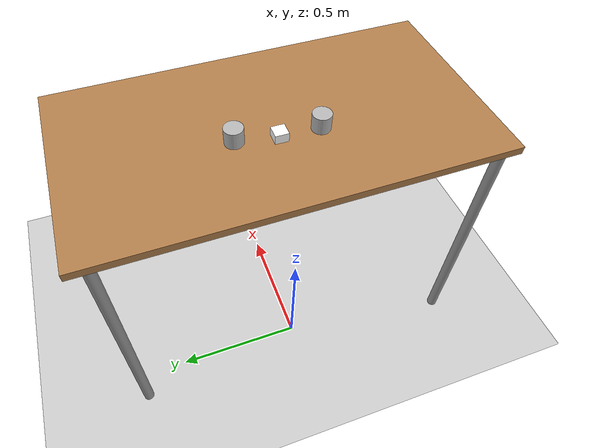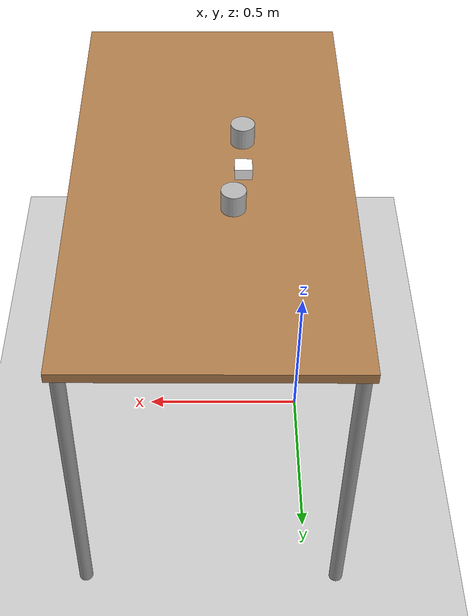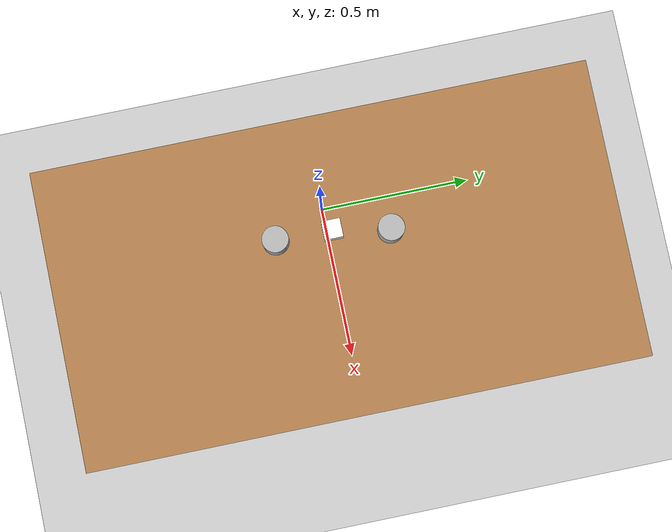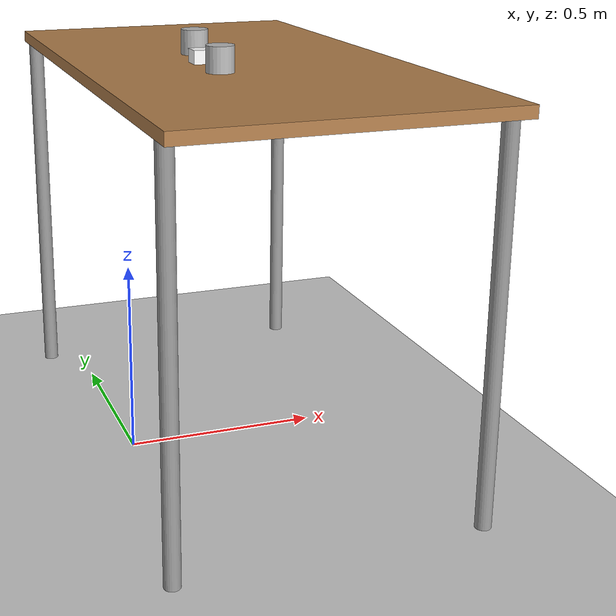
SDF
<sdf version="1.6">
 <world name="CRANE-X7 with Table">
  <scene><shadows>0</shadows></scene>
  <include><uri>model://sun</uri></include>
  <model name="table"><include><uri>model://table</uri></include><pose>0.29 0 0 0 0 1.5708</pose></model>
  <model name="wood_cube_5cm">
   <include><uri>model://wood_cube_5cm</uri></include>
   <pose>0.20 0 1.0 0 0 0</pose>
  </model>
  <model name="bottle1"><include><uri>model://beer</uri></include><pose>0.23 0.15 1.02 0 0 0</pose></model>
  <model name="bottle2"><include><uri>model://beer</uri></include><pose>0.20 -0.15 1.02 0 0 0</pose></model>
  <model name="ground_plane">
   <include><uri>model://ground_plane</uri></include>
   <joint name="ground_joint" type="fixed"><parent>ground_plane::link</parent><child>table::link</child></joint>
  </model>
 </world>
</sdf>

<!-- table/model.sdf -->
<sdf version="1.5">
  <model name="table">
    <static>true</static>
    <link name="link">
      <collision name="surface">
        <pose>0 0 1.0 0 0 0</pose>
        <geometry>
          <box>
            <size>1.5 0.8 0.03</size>
          </box>
        </geometry>
        <surface>
          <friction>
            <ode>
              <mu>0.6</mu>
              <mu2>0.6</mu2>
            </ode>
          </friction>
        </surface>
      </collision>
      <visual name="visual1">
        <pose>0 0 1.0 0 0 0</pose>
        <geometry>
          <box>
            <size>1.5 0.8 0.03</size>
          </box>
        </geometry>
        <material>
          <script>
            <uri>model://media/materials/scripts/gazebo.material</uri>
            <name>Gazebo/Wood</name>
          </script>
        </material>
      </visual>
      <collision name="front_left_leg">
        <pose>0.68 0.38 0.5 0 0 0</pose>
        <geometry>
          <cylinder>
            <radius>0.02</radius>
            <length>1.0</length>
          </cylinder>
        </geometry>
      </collision>
      <visual name="front_left_leg">
        <pose>0.68 0.38 0.5 0 0 0</pose>
        <geometry>
          <cylinder>
            <radius>0.02</radius>
            <length>1.0</length>
          </cylinder>
        </geometry>
        <material>
          <script>
            <uri>model://media/materials/scripts/gazebo.material</uri>
            <name>Gazebo/Grey</name>
          </script>
        </material>
      </visual>
      <collision name="front_right_leg">
        <pose>0.68 -0.38 0.5 0 0 0</pose>
        <geometry>
          <cylinder>
            <radius>0.02</radius>
            <length>1.0</length>
          </cylinder>
        </geometry>
      </collision>
      <visual name="front_right_leg">
        <pose>0.68 -0.38 0.5 0 0 0</pose>
        <geometry>
          <cylinder>
            <radius>0.02</radius>
            <length>1.0</length>
          </cylinder>
        </geometry>
        <material>
          <script>
            <uri>model://media/materials/scripts/gazebo.material</uri>
            <name>Gazebo/Grey</name>
          </script>
        </material>
      </visual>
      <collision name="back_right_leg">
        <pose>-0.68 -0.38 0.5 0 0 0</pose>
        <geometry>
          <cylinder>
            <radius>0.02</radius>
            <length>1.0</length>
          </cylinder>
        </geometry>
      </collision>
      <visual name="back_right_leg">
        <pose>-0.68 -0.38 0.5 0 0 0</pose>
        <geometry>
          <cylinder>
            <radius>0.02</radius>
            <length>1.0</length>
          </cylinder>
        </geometry>
        <material>
          <script>
            <uri>model://media/materials/scripts/gazebo.material</uri>
            <name>Gazebo/Grey</name>
          </script>
        </material>
      </visual>
      <collision name="back_left_leg">
        <pose>-0.68 0.38 0.5 0 0 0</pose>
        <geometry>
          <cylinder>
            <radius>0.02</radius>
            <length>1.0</length>
          </cylinder>
        </geometry>
      </collision>
      <visual name="back_left_leg">
        <pose>-0.68 0.38 0.5 0 0 0</pose>
        <geometry>
          <cylinder>
            <radius>0.02</radius>
            <length>1.0</length>
          </cylinder>
        </geometry>
        <material>
          <script>
            <uri>model://media/materials/scripts/gazebo.material</uri>
            <name>Gazebo/Grey</name>
          </script>
        </material>
      </visual>
    </link>
  </model>
</sdf>

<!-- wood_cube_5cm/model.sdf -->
<sdf version="1.5">
  <model name="wood_cube_5cm">
    <link name="link">
      <pose>0 0 0.025 0 0 0</pose>
      <inertial>
        <mass>0.0565</mass>
        <inertia>
          <ixx>2.3541666666666672e-05</ixx>
          <ixy>0</ixy>
          <ixz>0</ixz>
          <iyy>2.3541666666666672e-05</iyy>
          <iyz>0</iyz>
          <izz>2.3541666666666672e-05</izz>
        </inertia>
      </inertial>

      <collision name="collision">
        <geometry>
          <box>
            <size>0.05 0.05 0.05</size>
          </box>
        </geometry>
        <surface>
          <contact>
            <!-- Red Pine coefficients for longitudinal axis of the wood
                 according to:
                 http://www.fpl.fs.fed.us/documnts/fplgtr/fplgtr113/ch04.pdf -->
            <poissons_ratio>0.347</poissons_ratio>
            <elastic_modulus>8.8e+09</elastic_modulus>
            <ode>
              <kp>100000</kp>
              <kd>1</kd>
              <max_vel>1.0</max_vel>
              <min_depth>0.001</min_depth>
            </ode>
          </contact>
          <friction>
            <torsional>
              <coefficient>1.0</coefficient>
              <use_patch_radius>0</use_patch_radius>
              <surface_radius>0.05</surface_radius>
            </torsional>
          </friction>
        </surface>
      </collision>

      <visual name="visual">
        <geometry>
          <box>
            <size>0.05 0.05 0.05</size>
          </box>
        </geometry>
        <material><diffuse>1 1 1 1</diffuse><specular>0.1 0.1 0.1 1</specular></material>
      </visual>

    </link>
  </model>
</sdf>

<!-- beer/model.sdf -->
<sdf version='1.4'>
  <model name="beer">
    <link name='link'>
      <pose>0 0 0 0 0 0</pose>
      <inertial>
        <mass>0.390</mass>
        <inertia>
          <ixx>0.00058</ixx>
          <ixy>0</ixy>
          <ixz>0</ixz>
          <iyy>0.00058</iyy>
          <iyz>0</iyz>
          <izz>0.00025</izz>
        </inertia>
      </inertial>
      <collision name='collision'>
        <geometry>
          <cylinder>
            <radius>0.03500</radius>
            <length>0.12000</length>
          </cylinder>
        </geometry>
      </collision>

      <visual name='visual'>
        <geometry>
          <cylinder>
            <radius>0.03500</radius>
            <length>0.12000</length>
          </cylinder>
        </geometry>

        <material>
          <script>
            <uri>model://beer/materials/scripts</uri>
            <uri>model://beer/materials/textures</uri>
            <name>Beer/Diffuse</name>
          </script>
        </material>
      </visual>
    </link>
  </model>
</sdf>
